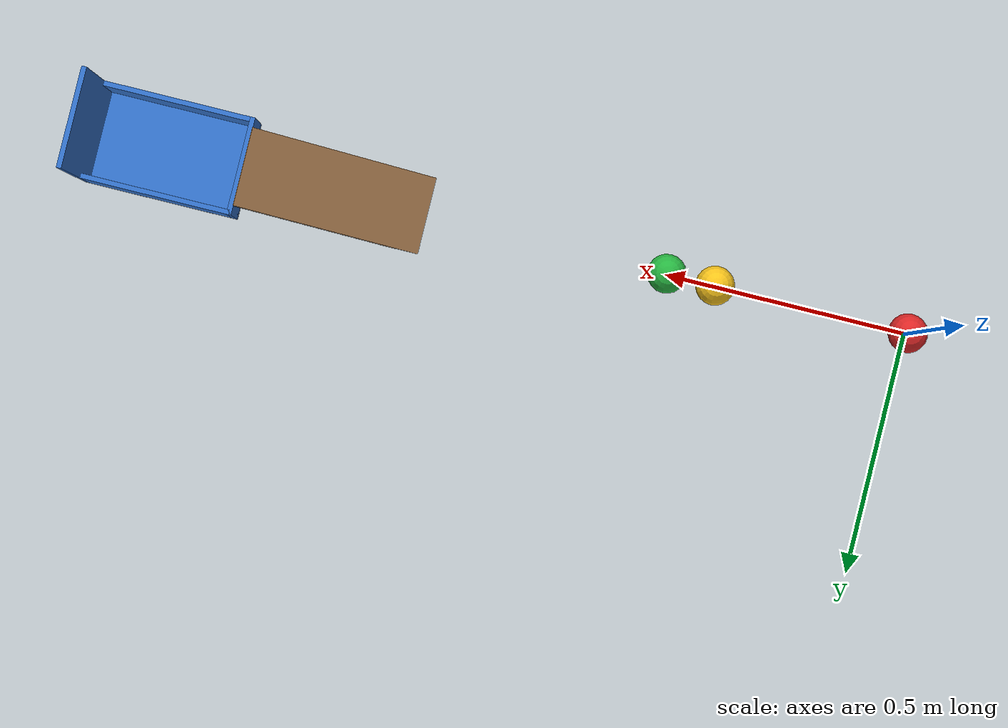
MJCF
<mujoco model="three_ball_chain_into_cup">
  <compiler angle="degree"/>
  <option timestep="0.002" gravity="0 0 -9.81"/>

  <visual>
    <global offwidth="1280" offheight="720"/>
  </visual>

  <asset>
    <material name="floor_mat" rgba="0.75 0.78 0.8 1"/>
    <material name="ramp_mat" rgba="0.55 0.4 0.25 1"/>
    <material name="cup_mat" rgba="0.2 0.45 0.8 1"/>
    <material name="ball1_mat" rgba="0.85 0.15 0.15 1"/>
    <material name="ball2_mat" rgba="0.95 0.75 0.1 1"/>
    <material name="ball3_mat" rgba="0.15 0.7 0.25 1"/>
  </asset>

  <worldbody>
    <light name="sun" pos="0.8 -1.0 2.5" dir="-0.2 0.4 -1" diffuse="0.9 0.9 0.9"/>
    <camera name="side" pos="0.85 -1.8 0.5" xyaxes="1 0 0 0 0.3 1"/>

    <geom name="floor" type="plane" size="5 5 0.1" pos="0 0 0" material="floor_mat" friction="1 0.005 0.0001" solref="0.02 1" priority="1"/>

    <!-- 15 degree ramp: top surface meets the floor at x = 1.0 and rises to z = 0.10 at x = 1.373 -->
    <geom name="ramp" type="box" size="0.193 0.08 0.01" pos="1.1890 0 0.0393" euler="0 -15 0" material="ramp_mat" friction="1 0.005 0.0001" solref="0.02 1" priority="1"/>

    <body name="ball1" pos="0 0 0.04">
      <freejoint name="ball1_free"/>
      <geom name="ball1_geom" type="sphere" size="0.04" density="1000" material="ball1_mat" friction="0.05 0.005 0.0001" solref="0.025 0.1"/>
    </body>

    <body name="ball2" pos="0.4 0 0.04">
      <freejoint name="ball2_free"/>
      <geom name="ball2_geom" type="sphere" size="0.04" density="1000" material="ball2_mat" friction="0.05 0.005 0.0001" solref="0.025 0.1"/>
    </body>

    <body name="ball3" pos="0.5 0 0.04">
      <freejoint name="ball3_free"/>
      <geom name="ball3_geom" type="sphere" size="0.04" density="1000" material="ball3_mat" friction="0.05 0.005 0.0001" solref="0.025 0.1"/>
    </body>

    <!-- static cup sitting on the floor just past the top of the ramp -->
    <body name="cup" pos="0 0 0">
      <geom name="cup_bottom" type="box" size="0.16 0.1 0.005" pos="1.533 0 0.005" material="cup_mat" friction="1 0.005 0.0001" solref="0.02 1" priority="1"/>
      <geom name="cup_front" type="box" size="0.005 0.1 0.0475" pos="1.378 0 0.0475" material="cup_mat" friction="1 0.005 0.0001" solref="0.02 1" priority="1"/>
      <geom name="cup_back" type="box" size="0.005 0.1 0.125" pos="1.688 0 0.125" material="cup_mat" friction="1 0.005 0.0001" solref="0.02 1" priority="1"/>
      <geom name="cup_left" type="box" size="0.16 0.005 0.0475" pos="1.533 0.095 0.0475" material="cup_mat" friction="1 0.005 0.0001" solref="0.02 1" priority="1"/>
      <geom name="cup_right" type="box" size="0.16 0.005 0.0475" pos="1.533 -0.095 0.0475" material="cup_mat" friction="1 0.005 0.0001" solref="0.02 1" priority="1"/>
    </body>
  </worldbody>

  <keyframe>
    <!-- ball1 starts rolling without slip at 3 m/s along +x (spin 75 rad/s about +y) -->
    <key name="start" qpos="0 0 0.04 1 0 0 0  0.4 0 0.04 1 0 0 0  0.5 0 0.04 1 0 0 0" qvel="3 0 0 0 75 0  0 0 0 0 0 0  0 0 0 0 0 0"/>
  </keyframe>
</mujoco>
